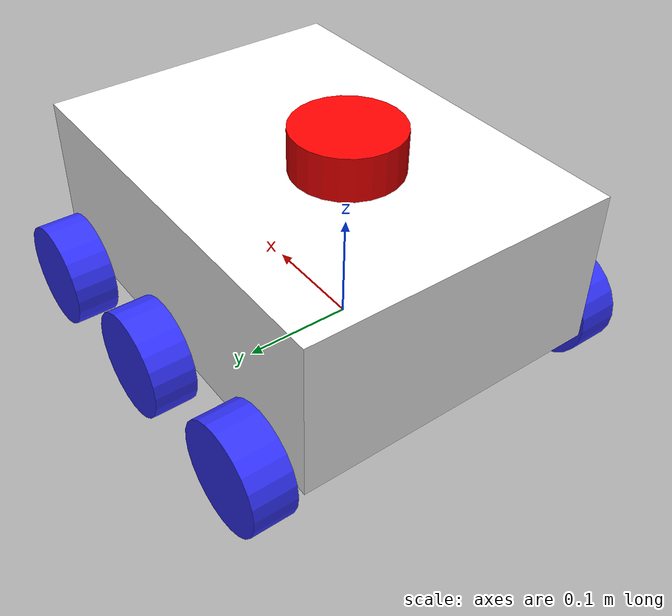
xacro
<?xml version="1.0"?>
<robot xmlns:xacro="http://www.ros.org/wiki/xacro"  name="robot">

    <xacro:include filename="robot_core.xacro"/>
    <xacro:include filename="ros2_control.xacro"/>
    <xacro:include filename="lidar.xacro"/>
    <xacro:include filename="camera.xacro"/>
</robot>

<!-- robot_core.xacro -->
<robot xmlns:xacro="http://www.ros.org/wiki/xacro"  name="robot">

    <xacro:include filename="inertial_macros.xacro"/>

    <material name="white">
        <color rgba="1 1 1 1"/>
    </material>

    <material name="orange">
        <color rgba="1 0.3 0.1 1"/>
    </material>

    <material name="blue">
        <color rgba="0.2 0.2 1 1"/>
    </material>

    <material name="black">
        <color rgba="0 0 0 1"/>
    </material>

    <material name="red">
        <color rgba="1 0 0 1"/>
    </material>

    <!-- BASE LINK -->
    <link name="base_link">

    </link>

    <!-- BASE_FOOTPRINT LINK -->

    <joint name="base_footprint_joint" type="fixed">
        <parent link="base_link"/>
        <child link="base_footprint"/>
        <origin xyz="0 0 0" rpy="0 0 0"/>
    </joint>

    <link name="base_footprint">

    </link>

    <!-- CHASSIS LINK -->
    <joint name="chassis_joint" type="fixed">
        <parent link="base_link"/>
        <child link="chassis"/>
        <origin xyz="-0.1 0 0"/>
    </joint>

    <link name="chassis">
        <visual>
            <origin xyz="0.15 0 0.075" rpy="0 0 0"/>
            <geometry>
                <box size="0.4 0.3 0.15"/>
            </geometry>
            <material name="white"/>
        </visual>

        <collision>
            <origin xyz="0.15 0 0.075" rpy="0 0 0"/>
            <geometry>
                <box size="0.4 0.3 0.15"/>
            </geometry>
        </collision>

        <xacro:inertial_box mass="0.5" x="0.4" y="0.3" z="0.15">
            <origin xyz="0.15 0 0.075" rpy="0 0 0"/>
        </xacro:inertial_box>
    </link>

    <gazebo reference="chassis">
        <material>
            Gazebo/White
        </material>
    </gazebo>

    <!-- LEFT WHEEL LINK -->
    <joint name="left_wheel_joint_front" type="continuous">
        <parent link="base_link"/>
        <child link="left_wheel_front"/>
        <origin xyz="0.2 0.175 0" rpy="-${pi/2} 0 0"/>
        <axis xyz="0 0 1"/>
    </joint>

    <joint name="left_wheel_joint_center" type="continuous">
        <parent link="base_link"/>
        <child link="left_wheel_center"/>
        <origin xyz="0.05 0.175 0" rpy="-${pi/2} 0 0"/>
        <axis xyz="0 0 1"/>
    </joint>

    <joint name="left_wheel_joint_back" type="continuous">
        <parent link="base_link"/>
        <child link="left_wheel_back"/>
        <origin xyz="-0.1 0.175 0" rpy="-${pi/2} 0 0"/>
        <axis xyz="0 0 1"/>
    </joint>

    <link name="left_wheel_front">
        <visual>
            <geometry>
                <cylinder length="0.04" radius="0.05" />
            </geometry>
            <material name="blue"/>
        </visual>

        <collision>
            <geometry>
                <sphere radius="0.05" />
            </geometry>
        </collision>

        <xacro:inertial_cylinder mass="0.1" length="0.04" radius="0.05">
            <origin xyz="0 0 0" rpy="0 0 0"/>
        </xacro:inertial_cylinder>
    </link>

    <link name="left_wheel_center">
        <visual>
            <geometry>
                <cylinder length="0.04" radius="0.05" />
            </geometry>
            <material name="blue"/>
        </visual>

        <collision>
            <geometry>
                <sphere radius="0.05" />
            </geometry>
        </collision>

        <xacro:inertial_cylinder mass="0.1" length="0.04" radius="0.05">
            <origin xyz="0 0 0" rpy="0 0 0"/>
        </xacro:inertial_cylinder>
    </link>

    <link name="left_wheel_back">
        <visual>
            <geometry>
                <cylinder length="0.04" radius="0.05"/>
            </geometry>
            <material name="blue"/>
        </visual>

        <collision>
            <geometry>
                <sphere radius="0.05" />
            </geometry>
        </collision>

        <xacro:inertial_cylinder mass="0.1" length="0.04" radius="0.05">
            <origin xyz="0 0 0" rpy="0 0 0"/>
        </xacro:inertial_cylinder>
    </link>

    <gazebo reference="left_wheel_front">
        <material>
            Gazebo/Blue
        </material>
    </gazebo>

    <gazebo reference="left_wheel_center">
        <material>
            Gazebo/Blue
        </material>
    </gazebo>

    <gazebo reference="left_wheel_back">
        <material>
            Gazebo/Blue
        </material>
    </gazebo>

    <!-- RIGHT WHEEL LINK -->
    <joint name="right_wheel_joint_front" type="continuous">
        <parent link="base_link"/>
        <child link="right_wheel_front"/>
        <origin xyz="0.2 -0.175 0" rpy="${pi/2} 0 0"/>
        <axis xyz="0 0 -1"/>
    </joint>

    <joint name="right_wheel_joint_center" type="continuous">
        <parent link="base_link"/>
        <child link="right_wheel_center"/>
        <origin xyz="0.05 -0.175 0" rpy="${pi/2} 0 0"/>
        <axis xyz="0 0 -1"/>
    </joint>

    <joint name="right_wheel_joint_back" type="continuous">
        <parent link="base_link"/>
        <child link="right_wheel_back"/>
        <origin xyz="-0.1 -0.175 0" rpy="${pi/2} 0 0"/>
        <axis xyz="0 0 -1"/>
    </joint>

    <link name="right_wheel_front">
        <visual>
            <geometry>
                <cylinder length="0.04" radius="0.05" />
            </geometry>
            <material name="blue"/>
        </visual>

        <collision>
            <geometry>
                <sphere radius="0.05" />
            </geometry>
        </collision>

        <xacro:inertial_cylinder mass="0.1" length="0.04" radius="0.05">
            <origin xyz="0 0 0" rpy="0 0 0"/>
        </xacro:inertial_cylinder>
    </link>

    <link name="right_wheel_center">
        <visual>
            <geometry>
                <cylinder length="0.04" radius="0.05" />
            </geometry>
            <material name="blue"/>
        </visual>

        <collision>
            <geometry>
                <sphere radius="0.05" />
            </geometry>
        </collision>

        <xacro:inertial_cylinder mass="0.1" length="0.04" radius="0.05">
            <origin xyz="0 0 0" rpy="0 0 0"/>
        </xacro:inertial_cylinder>
    </link>

    <link name="right_wheel_back">
        <visual>
            <geometry>
                <cylinder length="0.04" radius="0.05" />
            </geometry>
            <material name="blue"/>
        </visual>

        <collision>
            <geometry>
                <sphere radius="0.05" />
            </geometry>
        </collision>

        <xacro:inertial_cylinder mass="0.1" length="0.04" radius="0.05">
            <origin xyz="0 0 0" rpy="0 0 0"/>
        </xacro:inertial_cylinder>
    </link>

    <gazebo reference="right_wheel_front">
        <material>
            Gazebo/Blue
        </material>
    </gazebo>

    <gazebo reference="right_wheel_center">
        <material>
            Gazebo/Blue
        </material>
    </gazebo>

    <gazebo reference="right_wheel_back">
        <material>
            Gazebo/Blue
        </material>
    </gazebo>
</robot>

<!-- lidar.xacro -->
<robot xmlns:xacro="http://www.ros.org/wiki/xacro">

    <joint name="laser_joint" type="fixed">
        <parent link="chassis"/>
        <child link="laser_frame"/>
        <origin xyz="0.1 0 0.175" rpy="0 0 0"/>
    </joint>

    <link name="laser_frame">
        <visual>
            <geometry>
                <cylinder length="0.04" radius="0.05" />
            </geometry>
            <material name="red"/>
        </visual>

        <collision>
            <geometry>
                <cylinder length="0.04" radius="0.05" />
            </geometry>
        </collision>

        <xacro:inertial_cylinder mass="0.1" length="0.05" radius="0.05">
            <origin xyz="0 0 0" rpy="0 0 0"/>
        </xacro:inertial_cylinder>
    </link>

    <gazebo reference="laser_frame">
        <material>Gazebo/Red</material>

        <sensor name="laser" type="ray">
            <pose> 0 0 0 0 0 0 </pose>
            <visualize>false</visualize>
            <update_rate>10</update_rate>
            <ray>
                <scan>
                    <horizontal>
                        <samples>360</samples>
                        <min_angle>-3.14</min_angle>
                        <max_angle>3.14</max_angle>
                    </horizontal>
                </scan>
                <range>
                    <min>0.3</min>
                    <max>12</max>
                </range>
            </ray>
            <plugin name="laser_controller" filename="libgazebo_ros_ray_sensor.so">
                <ros>
                    <argument>~/out:=scan</argument>
                </ros>
                <output_type>sensor_msgs/LaserScan</output_type>
                <frame_name>laser_frame</frame_name>
            </plugin>
        </sensor>
    </gazebo>

</robot>

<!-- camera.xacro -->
<robot xmlns:xacro="http://www.ros.org/wiki/xacro">

    <joint name="camera_joint" type="fixed">
        <parent link="chassis"/>
        <child link="camera_link"/>
        <origin xyz="0.355 0 0.1" rpy="0 0 0"/>
    </joint>

    <link name="camera_link">
        <visual>
            <geometry>
                <box size="0.010 0.03 0.03"/>
            </geometry>
            <material name="red"/>
        </visual>
    </link>

    <joint name="camera_optical_joint" type="fixed">
        <parent link="camera_link"/>
        <child link="camera_optical_joint"/>
        <origin xyz="0 0 0" rpy="${-pi/2} 0 ${-pi/2}"/>
    </joint>

    <link name="camera_optical_joint"></link>

    <gazebo reference="camera_link">
        <material>Gazebo/Red</material>

        <sensor name="camera" type="camera">
            <pose> 0 0 0 0 0 0 </pose>
            <visualize>true</visualize>
            <update_rate>10</update_rate>
            <camera>
                <horizontal_fov>1.089</horizontal_fov>
                <image>
                    <format>R8G8B8</format>
                    <width>640</width>
                    <height>480</height>
                </image>
                <clip>
                    <near>0.05</near>
                    <far>8.0</far>
                </clip>
            </camera>
            <plugin name="camera_controller" filename="libgazebo_ros_camera.so">
                <frame_name>camera_optical_joint</frame_name>
            </plugin>
        </sensor>
    </gazebo>

</robot>
